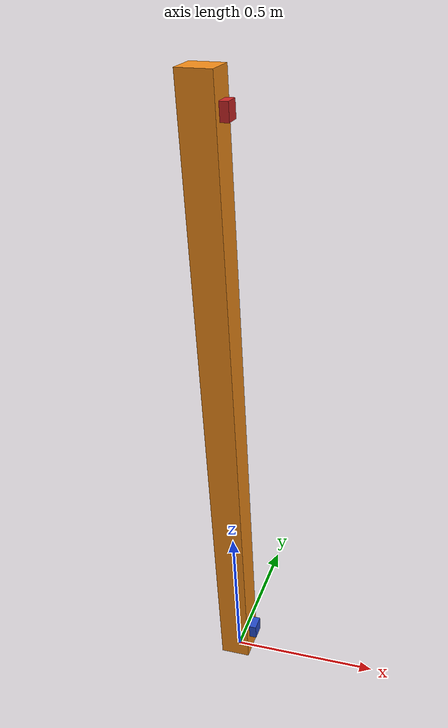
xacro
<?xml version="1.0"?>
<!-- Revolute-Revolute Manipulator -->
<robot name="camera" xmlns:xacro="http://www.ros.org/wiki/xacro">
<xacro:property name="height1" value="2" /> <!-- Link 1 -->
<xacro:property name="PI" value="3.1415926535897931"/>
<xacro:property name="width" value="0.1" /> <!-- Square dimensions (widthxwidth) of beams -->
<xacro:property name="camera_link" value="0.05" /> <!-- Size of square 'camera' box -->
<xacro:property name="axel_offset" value="0.05" /> <!-- Space btw top of beam and the each joint -->

<xacro:include filename="$(find robot_description)/urdf/cameras.gazebo" />

  <!-- Used for fixing robot to Gazebo 'base_link' -->
<link name="world"/>

<joint name="fixed" type="fixed">
  <parent link="world"/>
  <child link="link1"/>
</joint>

<!-- Base Link -->
  <link name="link1">
    <collision>
      <origin xyz="0 0 ${height1/2}" rpy="0 0 0"/>
      <geometry>
	<box size="${width} ${width} ${height1}"/>
      </geometry>
    </collision>

    <visual>
      <origin xyz="0 0 ${height1/2}" rpy="0 0 0"/>
      <geometry>
	<box size="${width} ${width} ${height1}"/>
      </geometry>
      <material name="orange"/>
    </visual>

    <inertial>
      <origin xyz="0 0 ${height1/2}" rpy="0 0 0"/>
      <mass value="1"/>
      <inertia
	  ixx="1.0" ixy="0.0" ixz="0.0"
	  iyy="1.0" iyz="0.0"
	  izz="1.0"/>
    </inertial>
  </link>

 <joint name="camera1_joint" type="fixed">
    <axis xyz="0 1 0" />
    <origin xyz="${camera_link} 0 ${height1 - axel_offset*2}" rpy="0 0 0"/>
    <parent link="link1"/>
    <child link="camera1_link"/>
  </joint>

  <!-- Camera -->
  <link name="camera1_link">
    <collision>
      <origin xyz="0 0 0" rpy="0 0 0"/>
      <geometry>
	<box size="${camera_link} ${camera_link} ${camera_link}"/>
      </geometry>
    </collision>

    <visual>
      <origin xyz="0 0 0" rpy="0 0 0"/>
      <geometry>
	<box size="${camera_link} ${camera_link} ${camera_link}"/>
      </geometry>
      <material name="red"/>
    </visual>

    <inertial>
      <mass value="1e-5" />
      <origin xyz="0 0 0" rpy="0 0 0"/>
      <inertia ixx="1e-6" ixy="0" ixz="0" iyy="1e-6" iyz="0" izz="1e-6" />
    </inertial>
  </link>

  <joint name="camera2_joint" type="fixed">
    <axis xyz="0 1 0" />
    <origin xyz="${camera_link} 0 ${axel_offset*2}" rpy="0 0 0"/>
    <parent link="link1"/>
    <child link="camera2_link"/>
  </joint>

  <!-- Camera -->
  <link name="camera2_link">
    <collision>
      <origin xyz="0 0 0" rpy="0 0 0"/>
      <geometry>
	<box size="${camera_link} ${camera_link} ${camera_link}"/>
      </geometry>
    </collision>

    <visual>
      <origin xyz="0 0 0" rpy="0 0 0"/>
      <geometry>
	<box size="${camera_link} ${camera_link} ${camera_link}"/>
      </geometry>
      <material name="blue"/>
    </visual>

    <inertial>
      <mass value="1e-5" />
      <origin xyz="0 0 0" rpy="0 0 0"/>
      <inertia ixx="1e-6" ixy="0" ixz="0" iyy="1e-6" iyz="0" izz="1e-6" />
    </inertial>
  </link>

</robot>
